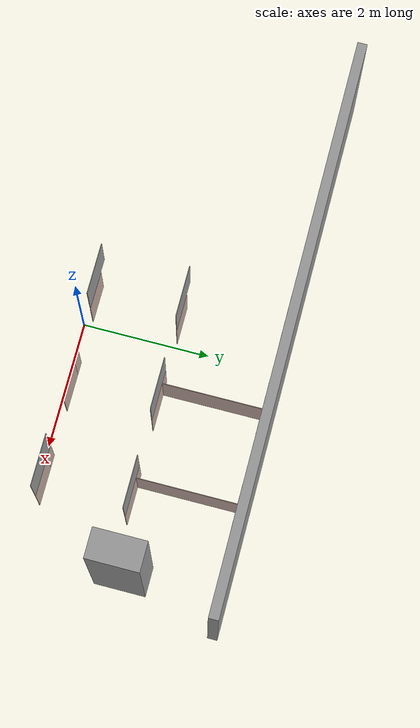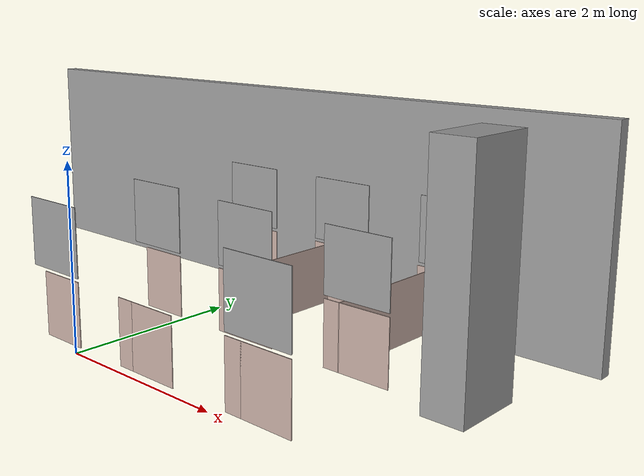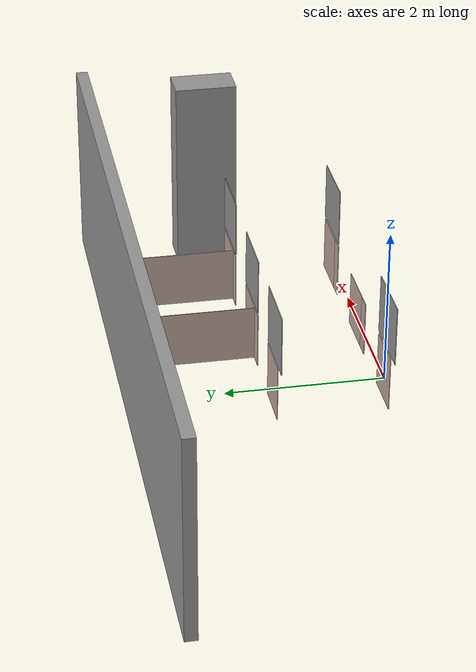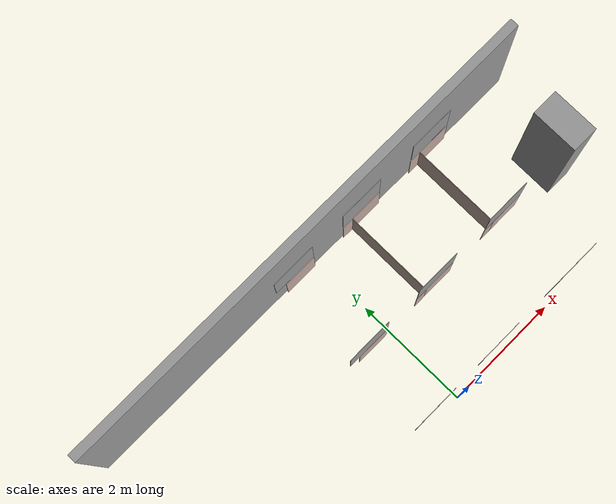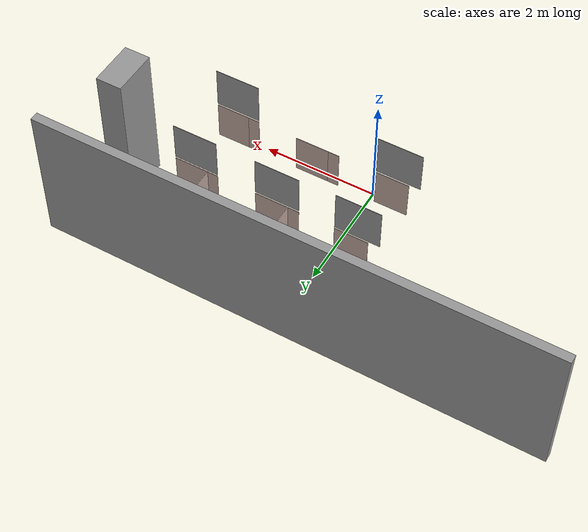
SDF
<sdf version="1.6">
 <model name="change_class3">
  <pose>-0.18406 0.008075 0 0 -0 0</pose>
  <link name="Wall_10">
   <collision name="Wall_10_Collision">
    <geometry><box><size>0.598 0.01 0.715</size></box></geometry>
    <pose>0 0 0.3575 0 -0 0</pose>
   </collision>
   <visual name="Wall_10_Visual">
    <pose>0 0 0.3575 0 -0 0</pose>
    <geometry><box><size>0.598 0.01 0.715</size></box></geometry>
    <material>
     <script><uri>file://media/materials/scripts/gazebo.material</uri><name>Gazebo/Grey</name></script>
     <ambient>0.760784 0.662745 0.627451 1</ambient>
    </material>
   </visual>
   <pose>-0.18794 1.46893 0 0 -0 0</pose>
  </link>
  <link name="Wall_12">
   <collision name="Wall_12_Collision">
    <geometry><box><size>0.598 0.01 0.715</size></box></geometry>
    <pose>0 0 0.3575 0 -0 0</pose>
   </collision>
   <visual name="Wall_12_Visual">
    <pose>0 0 0.3575 0 -0 0</pose>
    <geometry><box><size>0.598 0.01 0.715</size></box></geometry>
    <material>
     <script><uri>file://media/materials/scripts/gazebo.material</uri><name>Gazebo/Grey</name></script>
     <ambient>0.760784 0.662745 0.627451 1</ambient>
    </material>
   </visual>
   <pose>1.24906 1.46893 0 0 -0 0</pose>
  </link>
  <link name="Wall_14">
   <collision name="Wall_14_Collision">
    <geometry><box><size>0.61 0.01 0.715</size></box></geometry>
    <pose>0 0 0.3575 0 -0 0</pose>
   </collision>
   <visual name="Wall_14_Visual">
    <pose>0 0 0.3575 0 -0 0</pose>
    <geometry><box><size>0.61 0.01 0.715</size></box></geometry>
    <material>
     <script><uri>file://media/materials/scripts/gazebo.material</uri><name>Gazebo/Grey</name></script>
     <ambient>0.760784 0.662745 0.627451 1</ambient>
    </material>
   </visual>
   <pose>2.74706 1.46893 0 0 -0 0</pose>
  </link>
  <link name="Wall_143">
   <collision name="Wall_143_Collision">
    <geometry><box><size>0.598 0.01 0.715</size></box></geometry>
    <pose>0 0 0.3575 0 -0 0</pose>
   </collision>
   <visual name="Wall_143_Visual">
    <pose>0 0 0.3575 0 -0 0</pose>
    <geometry><box><size>0.598 0.01 0.715</size></box></geometry>
    <material>
     <script><uri>file://media/materials/scripts/gazebo.material</uri><name>Gazebo/Grey</name></script>
     <ambient>0.760784 0.662745 0.627451 1</ambient>
    </material>
   </visual>
   <pose>-0.18794 3.04292 0 0 -0 0</pose>
  </link>
  <link name="Wall_147">
   <collision name="Wall_147_Collision">
    <geometry><box><size>0.598 0.01 0.715</size></box></geometry>
    <pose>0 0 0.3575 0 -0 0</pose>
   </collision>
   <visual name="Wall_147_Visual">
    <pose>0 0 0.3575 0 -0 0</pose>
    <geometry><box><size>0.598 0.01 0.715</size></box></geometry>
    <material>
     <script><uri>file://media/materials/scripts/gazebo.material</uri><name>Gazebo/Grey</name></script>
     <ambient>0.760784 0.662745 0.627451 1</ambient>
    </material>
   </visual>
   <pose>1.24906 3.04292 0 0 -0 0</pose>
  </link>
  <link name="Wall_153">
   <collision name="Wall_153_Collision">
    <geometry><box><size>0.609517 0.01 0.715</size></box></geometry>
    <pose>0 0 0.3575 0 -0 0</pose>
   </collision>
   <visual name="Wall_153_Visual">
    <pose>0 0 0.3575 0 -0 0</pose>
    <geometry><box><size>0.609517 0.01 0.715</size></box></geometry>
    <material>
     <script><uri>file://media/materials/scripts/gazebo.material</uri><name>Gazebo/Grey</name></script>
     <ambient>0.760784 0.662745 0.627451 1</ambient>
    </material>
   </visual>
   <pose>2.74706 3.04292 0 0 -0 0</pose>
  </link>
  <link name="Wall_157">
   <collision name="Wall_157_Collision">
    <geometry><box><size>0.798 0.01 0.751</size></box></geometry>
    <pose>0 0 0.3755 0 -0 0</pose>
   </collision>
   <visual name="Wall_157_Visual">
    <pose>0 0 0.3755 0 -0 0</pose>
    <geometry><box><size>0.798 0.01 0.751</size></box></geometry>
    <material>
     <script><uri>file://media/materials/scripts/gazebo.material</uri><name>Gazebo/Grey</name></script>
     <ambient>1 1 1 1</ambient>
    </material>
   </visual>
   <pose>-0.29194 1.46893 0.751 0 -0 0</pose>
  </link>
  <link name="Wall_158">
   <collision name="Wall_158_Collision">
    <geometry><box><size>0.798 0.01 0.715</size></box></geometry>
    <pose>0 0 0.3575 0 -0 0</pose>
   </collision>
   <visual name="Wall_158_Visual">
    <pose>0 0 0.3575 0 -0 0</pose>
    <geometry><box><size>0.798 0.01 0.715</size></box></geometry>
    <material>
     <script><uri>file://media/materials/scripts/gazebo.material</uri><name>Gazebo/Grey</name></script>
     <ambient>1 1 1 1</ambient>
    </material>
   </visual>
   <pose>1.14906 1.46893 0.751 0 -0 0</pose>
  </link>
  <link name="Wall_159">
   <collision name="Wall_159_Collision">
    <geometry><box><size>0.798 0.01 0.715</size></box></geometry>
    <pose>0 0 0.3575 0 -0 0</pose>
   </collision>
   <visual name="Wall_159_Visual">
    <pose>0 0 0.3575 0 -0 0</pose>
    <geometry><box><size>0.798 0.01 0.715</size></box></geometry>
    <material>
     <script><uri>file://media/materials/scripts/gazebo.material</uri><name>Gazebo/Grey</name></script>
     <ambient>1 1 1 1</ambient>
    </material>
   </visual>
   <pose>2.65306 1.46893 0.751 0 -0 0</pose>
  </link>
  <link name="Wall_162">
   <collision name="Wall_162_Collision">
    <geometry><box><size>0.798 0.01 0.751</size></box></geometry>
    <pose>0 0 0.3755 0 -0 0</pose>
   </collision>
   <visual name="Wall_162_Visual">
    <pose>0 0 0.3755 0 -0 0</pose>
    <geometry><box><size>0.798 0.01 0.751</size></box></geometry>
    <material>
     <script><uri>file://media/materials/scripts/gazebo.material</uri><name>Gazebo/Grey</name></script>
     <ambient>1 1 1 1</ambient>
    </material>
   </visual>
   <pose>-0.29994 0.108925 0.751 0 -0 0</pose>
  </link>
  <link name="Wall_163">
   <collision name="Wall_163_Collision">
    <geometry><box><size>0.798 0.01 0.751</size></box></geometry>
    <pose>0 0 0.3755 0 -0 0</pose>
   </collision>
   <visual name="Wall_163_Visual">
    <pose>0 0 0.3755 0 -0 0</pose>
    <geometry><box><size>0.798 0.01 0.751</size></box></geometry>
    <material>
     <script><uri>file://media/materials/scripts/gazebo.material</uri><name>Gazebo/Grey</name></script>
     <ambient>1 1 1 1</ambient>
    </material>
   </visual>
   <pose>2.69206 0.108925 0.751 0 -0 0</pose>
  </link>
  <link name="Wall_187">
   <collision name="Wall_187_Collision">
    <geometry><box><size>0.798 0.01 0.751</size></box></geometry>
    <pose>0 0 0.3755 0 -0 0</pose>
   </collision>
   <visual name="Wall_187_Visual">
    <pose>0 0 0.3755 0 -0 0</pose>
    <geometry><box><size>0.798 0.01 0.751</size></box></geometry>
    <material>
     <script><uri>file://media/materials/scripts/gazebo.material</uri><name>Gazebo/Grey</name></script>
     <ambient>1 1 1 1</ambient>
    </material>
   </visual>
   <pose>-0.29194 3.04893 0.751 0 -0 0</pose>
  </link>
  <link name="Wall_188">
   <collision name="Wall_188_Collision">
    <geometry><box><size>0.798 0.01 0.751</size></box></geometry>
    <pose>0 0 0.3755 0 -0 0</pose>
   </collision>
   <visual name="Wall_188_Visual">
    <pose>0 0 0.3755 0 -0 0</pose>
    <geometry><box><size>0.798 0.01 0.751</size></box></geometry>
    <material>
     <script><uri>file://media/materials/scripts/gazebo.material</uri><name>Gazebo/Grey</name></script>
     <ambient>1 1 1 1</ambient>
    </material>
   </visual>
   <pose>1.14906 3.04893 0.751 0 -0 0</pose>
  </link>
  <link name="Wall_189">
   <collision name="Wall_189_Collision">
    <geometry><box><size>0.798 0.01 0.751</size></box></geometry>
    <pose>0 0 0.3755 0 -0 0</pose>
   </collision>
   <visual name="Wall_189_Visual">
    <pose>0 0 0.3755 0 -0 0</pose>
    <geometry><box><size>0.798 0.01 0.751</size></box></geometry>
    <material>
     <script><uri>file://media/materials/scripts/gazebo.material</uri><name>Gazebo/Grey</name></script>
     <ambient>1 1 1 1</ambient>
    </material>
   </visual>
   <pose>2.65306 3.04893 0.751 0 -0 0</pose>
  </link>
  <link name="Wall_197">
   <collision name="Wall_197_Collision">
    <geometry><box><size>1.584 0.01 0.715</size></box></geometry>
    <pose>0 0 0.3575 0 -0 0</pose>
   </collision>
   <visual name="Wall_197_Visual">
    <pose>0 0 0.3575 0 -0 0</pose>
    <geometry><box><size>1.584 0.01 0.715</size></box></geometry>
    <material>
     <script><uri>file://media/materials/scripts/gazebo.material</uri><name>Gazebo/Grey</name></script>
     <ambient>0.760784 0.662745 0.627451 1</ambient>
    </material>
   </visual>
   <pose>0.95506 2.25592 0 0 0 -1.5708</pose>
  </link>
  <link name="Wall_199">
   <collision name="Wall_199_Collision">
    <geometry><box><size>1.58405 0.01 0.715</size></box></geometry>
    <pose>0 0 0.3575 0 -0 0</pose>
   </collision>
   <visual name="Wall_199_Visual">
    <pose>0 0 0.3575 0 -0 0</pose>
    <geometry><box><size>1.58405 0.01 0.715</size></box></geometry>
    <material>
     <script><uri>file://media/materials/scripts/gazebo.material</uri><name>Gazebo/Grey</name></script>
     <ambient>0.760784 0.662745 0.627451 1</ambient>
    </material>
   </visual>
   <pose>2.44706 2.25592 0 0 0 -1.5708</pose>
  </link>
  <link name="Wall_20">
   <collision name="Wall_20_Collision">
    <geometry><box><size>0.598 0.01 0.715</size></box></geometry>
    <pose>0 0 0.3575 0 -0 0</pose>
   </collision>
   <visual name="Wall_20_Visual">
    <pose>0 0 0.3575 0 -0 0</pose>
    <geometry><box><size>0.598 0.01 0.715</size></box></geometry>
    <material>
     <script><uri>file://media/materials/scripts/gazebo.material</uri><name>Gazebo/Grey</name></script>
     <ambient>0.760784 0.662745 0.627451 1</ambient>
    </material>
   </visual>
   <pose>-0.19994 0.108925 0 0 -0 0</pose>
  </link>
  <link name="Wall_236">
   <collision name="Wall_236_Collision">
    <geometry><box><size>0.21 0.01 0.715</size></box></geometry>
    <pose>0 0 0.3575 0 -0 0</pose>
   </collision>
   <visual name="Wall_236_Visual">
    <pose>0 0 0.3575 0 -0 0</pose>
    <geometry><box><size>0.21 0.01 0.715</size></box></geometry>
    <material>
     <script><uri>file://media/materials/scripts/gazebo.material</uri><name>Gazebo/Grey</name></script>
     <ambient>0.760784 0.662745 0.627451 1</ambient>
    </material>
   </visual>
   <pose>0.85506 1.46893 0 0 -0 0</pose>
  </link>
  <link name="Wall_238">
   <collision name="Wall_238_Collision">
    <geometry><box><size>0.21 0.01 0.715</size></box></geometry>
    <pose>0 0 0.3575 0 -0 0</pose>
   </collision>
   <visual name="Wall_238_Visual">
    <pose>0 0 0.3575 0 -0 0</pose>
    <geometry><box><size>0.21 0.01 0.715</size></box></geometry>
    <material>
     <script><uri>file://media/materials/scripts/gazebo.material</uri><name>Gazebo/Grey</name></script>
     <ambient>0.760784 0.662745 0.627451 1</ambient>
    </material>
   </visual>
   <pose>0.85506 3.04292 0 0 -0 0</pose>
  </link>
  <link name="Wall_24">
   <collision name="Wall_24_Collision">
    <geometry><box><size>0.598 0.01 0.715</size></box></geometry>
    <pose>0 0 0.3575 0 -0 0</pose>
   </collision>
   <visual name="Wall_24_Visual">
    <pose>0 0 0.3575 0 -0 0</pose>
    <geometry><box><size>0.598 0.01 0.715</size></box></geometry>
    <material>
     <script><uri>file://media/materials/scripts/gazebo.material</uri><name>Gazebo/Grey</name></script>
     <ambient>0.760784 0.662745 0.627451 1</ambient>
    </material>
   </visual>
   <pose>2.79206 0.108925 0 0 -0 0</pose>
  </link>
  <link name="Wall_240">
   <collision name="Wall_240_Collision">
    <geometry><box><size>0.198 0.01 0.715</size></box></geometry>
    <pose>0 0 0.3575 0 -0 0</pose>
   </collision>
   <visual name="Wall_240_Visual">
    <pose>0 0 0.3575 0 -0 0</pose>
    <geometry><box><size>0.198 0.01 0.715</size></box></geometry>
    <material>
     <script><uri>file://media/materials/scripts/gazebo.material</uri><name>Gazebo/Grey</name></script>
     <ambient>0.760784 0.662745 0.627451 1</ambient>
    </material>
   </visual>
   <pose>2.35306 1.46893 0 0 -0 0</pose>
  </link>
  <link name="Wall_242">
   <collision name="Wall_242_Collision">
    <geometry><box><size>0.21 0.01 0.715</size></box></geometry>
    <pose>0 0 0.3575 0 -0 0</pose>
   </collision>
   <visual name="Wall_242_Visual">
    <pose>0 0 0.3575 0 -0 0</pose>
    <geometry><box><size>0.21 0.01 0.715</size></box></geometry>
    <material>
     <script><uri>file://media/materials/scripts/gazebo.material</uri><name>Gazebo/Grey</name></script>
     <ambient>0.760784 0.662745 0.627451 1</ambient>
    </material>
   </visual>
   <pose>2.34706 3.04292 0 0 -0 0</pose>
  </link>
  <link name="Wall_291">
   <collision name="Wall_291_Collision">
    <geometry><box><size>0.21 0.01 0.715</size></box></geometry>
    <pose>0 0 0.3575 0 -0 0</pose>
   </collision>
   <visual name="Wall_291_Visual">
    <pose>0 0 0.3575 0 -0 0</pose>
    <geometry><box><size>0.21 0.01 0.715</size></box></geometry>
    <material>
     <script><uri>file://media/materials/scripts/gazebo.material</uri><name>Gazebo/Grey</name></script>
     <ambient>0.760784 0.662745 0.627451 1</ambient>
    </material>
   </visual>
   <pose>0.88406 0.108925 0 0 -0 0</pose>
  </link>
  <link name="Wall_295">
   <collision name="Wall_295_Collision">
    <geometry><box><size>0.21 0.01 0.715</size></box></geometry>
    <pose>0 0 0.3575 0 -0 0</pose>
   </collision>
   <visual name="Wall_295_Visual">
    <pose>0 0 0.3575 0 -0 0</pose>
    <geometry><box><size>0.21 0.01 0.715</size></box></geometry>
    <material>
     <script><uri>file://media/materials/scripts/gazebo.material</uri><name>Gazebo/Grey</name></script>
     <ambient>0.760784 0.662745 0.627451 1</ambient>
    </material>
   </visual>
   <pose>2.39806 0.108925 0 0 -0 0</pose>
  </link>
  <link name="Wall_301">
   <collision name="Wall_301_Collision">
    <geometry><box><size>0.795 0.45 2.5</size></box></geometry>
    <pose>0 0 1.25 0 -0 0</pose>
   </collision>
   <visual name="Wall_301_Visual">
    <pose>0 0 1.25 0 -0 0</pose>
    <geometry><box><size>0.795 0.45 2.5</size></box></geometry>
    <material>
     <script><uri>file://media/materials/scripts/gazebo.material</uri><name>Gazebo/Grey</name></script>
     <ambient>1 1 1 1</ambient>
    </material>
   </visual>
   <pose>3.80206 1.62443 0 0 0 -1.5708</pose>
  </link>
  <link name="Wall_310">
   <collision name="Wall_310_Collision">
    <geometry><box><size>8.75 0.15 2.5</size></box></geometry>
    <pose>0 0 1.25 0 -0 0</pose>
   </collision>
   <visual name="Wall_310_Visual">
    <pose>0 0 1.25 0 -0 0</pose>
    <geometry><box><size>8.75 0.15 2.5</size></box></geometry>
    <material>
     <script><uri>file://media/materials/scripts/gazebo.material</uri><name>Gazebo/Grey</name></script>
     <ambient>1 1 1 1</ambient>
    </material>
   </visual>
   <pose>0.005 3.14627 0 0 -0 0</pose>
  </link>
  <link name="Wall_32">
   <collision name="Wall_32_Collision">
    <geometry><box><size>0.598 0.01 0.715</size></box></geometry>
    <pose>0 0 0.3575 0 -0 0</pose>
   </collision>
   <visual name="Wall_32_Visual">
    <pose>0 0 0.3575 0 -0 0</pose>
    <geometry><box><size>0.598 0.01 0.715</size></box></geometry>
    <material>
     <script><uri>file://media/materials/scripts/gazebo.material</uri><name>Gazebo/Grey</name></script>
     <ambient>0.760784 0.662745 0.627451 1</ambient>
    </material>
   </visual>
   <pose>1.27806 0.108925 0 0 -0 0</pose>
  </link>
  <static>1</static>
 </model>
</sdf>
